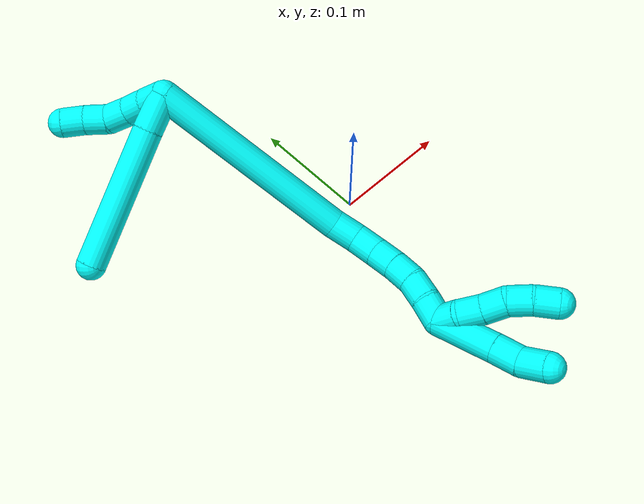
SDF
<sdf version="1.7">
 <world name="default">
  <model name="3">
   <static>0</static>
   <link name="3">
    <collision name="collision-cylinder-e_1_2_8">
     <pose>-0.008551 -0.012284 -0.00471 1.93692 -0.576349 -0.814086</pose>
     <geometry><cylinder><radius>0.0125</radius><length>0.031381</length></cylinder></geometry>
     <surface>
      <friction><ode><mu>1.16</mu><mu2>1.16</mu2><slip1>0</slip1><slip2>0</slip2></ode></friction>
      <contact><ode><kp>1e+06</kp><kd>1</kd><max_vel>0</max_vel><min_depth>0.001</min_depth></ode></contact>
     </surface>
    </collision>
    <visual name="visual-cylinder-e_1_2_8">
     <pose>-0.008551 -0.012284 -0.00471 1.93692 -0.576349 -0.814086</pose>
     <geometry><cylinder><radius>0.0125</radius><length>0.031381</length></cylinder></geometry>
     <material><ambient>0.003922 1 0.996078 1</ambient></material>
    </visual>
    <collision name="collision-cylinder-e_2_8_6">
     <pose>-0.050963 -0.071135 -0.023649 1.86736 -0.607633 -0.801431</pose>
     <geometry><cylinder><radius>0.0125</radius><length>0.118619</length></cylinder></geometry>
     <surface>
      <friction><ode><mu>1.16</mu><mu2>1.16</mu2><slip1>0</slip1><slip2>0</slip2></ode></friction>
      <contact><ode><kp>1e+06</kp><kd>1</kd><max_vel>0</max_vel><min_depth>0.001</min_depth></ode></contact>
     </surface>
    </collision>
    <visual name="visual-cylinder-e_2_8_6">
     <pose>-0.050963 -0.071135 -0.023649 1.86736 -0.607633 -0.801431</pose>
     <geometry><cylinder><radius>0.0125</radius><length>0.118619</length></cylinder></geometry>
     <material><ambient>0.003922 1 0.996078 1</ambient></material>
    </visual>
    <collision name="collision-cylinder-e_1_2_9">
     <pose>-0.001126 -0.003043 -0.009459 2.83039 -0.112793 -0.690925</pose>
     <geometry><cylinder><radius>0.0125</radius><length>0.02</length></cylinder></geometry>
     <surface>
      <friction><ode><mu>1.16</mu><mu2>1.16</mu2><slip1>0</slip1><slip2>0</slip2></ode></friction>
      <contact><ode><kp>1e+06</kp><kd>1</kd><max_vel>0</max_vel><min_depth>0.001</min_depth></ode></contact>
     </surface>
    </collision>
    <visual name="visual-cylinder-e_1_2_9">
     <pose>-0.001126 -0.003043 -0.009459 2.83039 -0.112793 -0.690925</pose>
     <geometry><cylinder><radius>0.0125</radius><length>0.02</length></cylinder></geometry>
     <material><ambient>0.003922 1 0.996078 1</ambient></material>
    </visual>
    <collision name="collision-cylinder-e_2_9_10">
     <pose>-0.004398 -0.009331 -0.02813 2.80283 -0.216372 -1.13161</pose>
     <geometry><cylinder><radius>0.0125</radius><length>0.02</length></cylinder></geometry>
     <surface>
      <friction><ode><mu>1.16</mu><mu2>1.16</mu2><slip1>0</slip1><slip2>0</slip2></ode></friction>
      <contact><ode><kp>1e+06</kp><kd>1</kd><max_vel>0</max_vel><min_depth>0.001</min_depth></ode></contact>
     </surface>
    </collision>
    <visual name="visual-cylinder-e_2_9_10">
     <pose>-0.004398 -0.009331 -0.02813 2.80283 -0.216372 -1.13161</pose>
     <geometry><cylinder><radius>0.0125</radius><length>0.02</length></cylinder></geometry>
     <material><ambient>0.003922 1 0.996078 1</ambient></material>
    </visual>
    <collision name="collision-cylinder-e_3_10_11">
     <pose>-0.010889 -0.015098 -0.045989 2.8579 -0.449393 -2.02467</pose>
     <geometry><cylinder><radius>0.0125</radius><length>0.02</length></cylinder></geometry>
     <surface>
      <friction><ode><mu>1.16</mu><mu2>1.16</mu2><slip1>0</slip1><slip2>0</slip2></ode></friction>
      <contact><ode><kp>1e+06</kp><kd>1</kd><max_vel>0</max_vel><min_depth>0.001</min_depth></ode></contact>
     </surface>
    </collision>
    <visual name="visual-cylinder-e_3_10_11">
     <pose>-0.010889 -0.015098 -0.045989 2.8579 -0.449393 -2.02467</pose>
     <geometry><cylinder><radius>0.0125</radius><length>0.02</length></cylinder></geometry>
     <material><ambient>0.003922 1 0.996078 1</ambient></material>
    </visual>
    <collision name="collision-cylinder-e_4_11_12">
     <pose>-0.019859 -0.016734 -0.063458 -3.04163 -0.480901 2.73908</pose>
     <geometry><cylinder><radius>0.0125</radius><length>0.02</length></cylinder></geometry>
     <surface>
      <friction><ode><mu>1.16</mu><mu2>1.16</mu2><slip1>0</slip1><slip2>0</slip2></ode></friction>
      <contact><ode><kp>1e+06</kp><kd>1</kd><max_vel>0</max_vel><min_depth>0.001</min_depth></ode></contact>
     </surface>
    </collision>
    <visual name="visual-cylinder-e_4_11_12">
     <pose>-0.019859 -0.016734 -0.063458 -3.04163 -0.480901 2.73908</pose>
     <geometry><cylinder><radius>0.0125</radius><length>0.02</length></cylinder></geometry>
     <material><ambient>0.003922 1 0.996078 1</ambient></material>
    </visual>
    <collision name="collision-cylinder-e_5_12_5">
     <pose>-0.03045 -0.015384 -0.080291 -3.08362 -0.639223 2.96681</pose>
     <geometry><cylinder><radius>0.0125</radius><length>0.02</length></cylinder></geometry>
     <surface>
      <friction><ode><mu>1.16</mu><mu2>1.16</mu2><slip1>0</slip1><slip2>0</slip2></ode></friction>
      <contact><ode><kp>1e+06</kp><kd>1</kd><max_vel>0</max_vel><min_depth>0.001</min_depth></ode></contact>
     </surface>
    </collision>
    <visual name="visual-cylinder-e_5_12_5">
     <pose>-0.03045 -0.015384 -0.080291 -3.08362 -0.639223 2.96681</pose>
     <geometry><cylinder><radius>0.0125</radius><length>0.02</length></cylinder></geometry>
     <material><ambient>0.003922 1 0.996078 1</ambient></material>
    </visual>
    <collision name="collision-cylinder-e_1_2_13">
     <pose>0.032428 -0.065488 0.048377 0.934555 0.379034 0.192962</pose>
     <geometry><cylinder><radius>0.0125</radius><length>0.175278</length></cylinder></geometry>
     <surface>
      <friction><ode><mu>1.16</mu><mu2>1.16</mu2><slip1>0</slip1><slip2>0</slip2></ode></friction>
      <contact><ode><kp>1e+06</kp><kd>1</kd><max_vel>0</max_vel><min_depth>0.001</min_depth></ode></contact>
     </surface>
    </collision>
    <visual name="visual-cylinder-e_1_2_13">
     <pose>0.032428 -0.065488 0.048377 0.934555 0.379034 0.192962</pose>
     <geometry><cylinder><radius>0.0125</radius><length>0.175278</length></cylinder></geometry>
     <material><ambient>0.003922 1 0.996078 1</ambient></material>
    </visual>
    <collision name="collision-cylinder-e_2_13_14">
     <pose>0.068248 -0.138221 0.104675 0.740849 0.306023 0.119638</pose>
     <geometry><cylinder><radius>0.0125</radius><length>0.022516</length></cylinder></geometry>
     <surface>
      <friction><ode><mu>1.16</mu><mu2>1.16</mu2><slip1>0</slip1><slip2>0</slip2></ode></friction>
      <contact><ode><kp>1e+06</kp><kd>1</kd><max_vel>0</max_vel><min_depth>0.001</min_depth></ode></contact>
     </surface>
    </collision>
    <visual name="visual-cylinder-e_2_13_14">
     <pose>0.068248 -0.138221 0.104675 0.740849 0.306023 0.119638</pose>
     <geometry><cylinder><radius>0.0125</radius><length>0.022516</length></cylinder></geometry>
     <material><ambient>0.003922 1 0.996078 1</ambient></material>
    </visual>
    <collision name="collision-cylinder-e_3_14_15">
     <pose>0.071955 -0.151158 0.121785 0.55463 0.029104 0.008285</pose>
     <geometry><cylinder><radius>0.0125</radius><length>0.021626</length></cylinder></geometry>
     <surface>
      <friction><ode><mu>1.16</mu><mu2>1.16</mu2><slip1>0</slip1><slip2>0</slip2></ode></friction>
      <contact><ode><kp>1e+06</kp><kd>1</kd><max_vel>0</max_vel><min_depth>0.001</min_depth></ode></contact>
     </surface>
    </collision>
    <visual name="visual-cylinder-e_3_14_15">
     <pose>0.071955 -0.151158 0.121785 0.55463 0.029104 0.008285</pose>
     <geometry><cylinder><radius>0.0125</radius><length>0.021626</length></cylinder></geometry>
     <material><ambient>0.003922 1 0.996078 1</ambient></material>
    </visual>
    <collision name="collision-cylinder-e_4_15_16">
     <pose>0.071116 -0.161248 0.140192 0.445165 -0.112442 -0.025475</pose>
     <geometry><cylinder><radius>0.0125</radius><length>0.020559</length></cylinder></geometry>
     <surface>
      <friction><ode><mu>1.16</mu><mu2>1.16</mu2><slip1>0</slip1><slip2>0</slip2></ode></friction>
      <contact><ode><kp>1e+06</kp><kd>1</kd><max_vel>0</max_vel><min_depth>0.001</min_depth></ode></contact>
     </surface>
    </collision>
    <visual name="visual-cylinder-e_4_15_16">
     <pose>0.071116 -0.161248 0.140192 0.445165 -0.112442 -0.025475</pose>
     <geometry><cylinder><radius>0.0125</radius><length>0.020559</length></cylinder></geometry>
     <material><ambient>0.003922 1 0.996078 1</ambient></material>
    </visual>
    <collision name="collision-cylinder-e_5_16_17">
     <pose>0.068359 -0.170433 0.158053 0.505754 -0.160904 -0.041663</pose>
     <geometry><cylinder><radius>0.0125</radius><length>0.020016</length></cylinder></geometry>
     <surface>
      <friction><ode><mu>1.16</mu><mu2>1.16</mu2><slip1>0</slip1><slip2>0</slip2></ode></friction>
      <contact><ode><kp>1e+06</kp><kd>1</kd><max_vel>0</max_vel><min_depth>0.001</min_depth></ode></contact>
     </surface>
    </collision>
    <visual name="visual-cylinder-e_5_16_17">
     <pose>0.068359 -0.170433 0.158053 0.505754 -0.160904 -0.041663</pose>
     <geometry><cylinder><radius>0.0125</radius><length>0.020016</length></cylinder></geometry>
     <material><ambient>0.003922 1 0.996078 1</ambient></material>
    </visual>
    <collision name="collision-cylinder-e_6_17_18">
     <pose>0.063551 -0.18118 0.174058 0.680595 -0.326229 -0.116412</pose>
     <geometry><cylinder><radius>0.0125</radius><length>0.020003</length></cylinder></geometry>
     <surface>
      <friction><ode><mu>1.16</mu><mu2>1.16</mu2><slip1>0</slip1><slip2>0</slip2></ode></friction>
      <contact><ode><kp>1e+06</kp><kd>1</kd><max_vel>0</max_vel><min_depth>0.001</min_depth></ode></contact>
     </surface>
    </collision>
    <visual name="visual-cylinder-e_6_17_18">
     <pose>0.063551 -0.18118 0.174058 0.680595 -0.326229 -0.116412</pose>
     <geometry><cylinder><radius>0.0125</radius><length>0.020003</length></cylinder></geometry>
     <material><ambient>0.003922 1 0.996078 1</ambient></material>
    </visual>
    <collision name="collision-cylinder-e_7_18_1">
     <pose>0.057858 -0.194393 0.187845 0.845831 -0.251313 -0.113586</pose>
     <geometry><cylinder><radius>0.0125</radius><length>0.020002</length></cylinder></geometry>
     <surface>
      <friction><ode><mu>1.16</mu><mu2>1.16</mu2><slip1>0</slip1><slip2>0</slip2></ode></friction>
      <contact><ode><kp>1e+06</kp><kd>1</kd><max_vel>0</max_vel><min_depth>0.001</min_depth></ode></contact>
     </surface>
    </collision>
    <visual name="visual-cylinder-e_7_18_1">
     <pose>0.057858 -0.194393 0.187845 0.845831 -0.251313 -0.113586</pose>
     <geometry><cylinder><radius>0.0125</radius><length>0.020002</length></cylinder></geometry>
     <material><ambient>0.003922 1 0.996078 1</ambient></material>
    </visual>
    <collision name="collision-cylinder-e_1_1_19">
     <pose>0.056942 -0.198263 0.203548 -0.349309 0.157704 -0.027883</pose>
     <geometry><cylinder><radius>0.0125</radius><length>0.02</length></cylinder></geometry>
     <surface>
      <friction><ode><mu>1.16</mu><mu2>1.16</mu2><slip1>0</slip1><slip2>0</slip2></ode></friction>
      <contact><ode><kp>1e+06</kp><kd>1</kd><max_vel>0</max_vel><min_depth>0.001</min_depth></ode></contact>
     </surface>
    </collision>
    <visual name="visual-cylinder-e_1_1_19">
     <pose>0.056942 -0.198263 0.203548 -0.349309 0.157704 -0.027883</pose>
     <geometry><cylinder><radius>0.0125</radius><length>0.02</length></cylinder></geometry>
     <material><ambient>0.003922 1 0.996078 1</ambient></material>
    </visual>
    <collision name="collision-cylinder-e_2_19_20">
     <pose>0.062871 -0.193252 0.221678 -0.182326 0.450968 -0.041933</pose>
     <geometry><cylinder><radius>0.0125</radius><length>0.02</length></cylinder></geometry>
     <surface>
      <friction><ode><mu>1.16</mu><mu2>1.16</mu2><slip1>0</slip1><slip2>0</slip2></ode></friction>
      <contact><ode><kp>1e+06</kp><kd>1</kd><max_vel>0</max_vel><min_depth>0.001</min_depth></ode></contact>
     </surface>
    </collision>
    <visual name="visual-cylinder-e_2_19_20">
     <pose>0.062871 -0.193252 0.221678 -0.182326 0.450968 -0.041933</pose>
     <geometry><cylinder><radius>0.0125</radius><length>0.02</length></cylinder></geometry>
     <material><ambient>0.003922 1 0.996078 1</ambient></material>
    </visual>
    <collision name="collision-cylinder-e_3_20_21">
     <pose>0.071398 -0.188796 0.239169 -0.315922 0.430019 -0.069544</pose>
     <geometry><cylinder><radius>0.0125</radius><length>0.02</length></cylinder></geometry>
     <surface>
      <friction><ode><mu>1.16</mu><mu2>1.16</mu2><slip1>0</slip1><slip2>0</slip2></ode></friction>
      <contact><ode><kp>1e+06</kp><kd>1</kd><max_vel>0</max_vel><min_depth>0.001</min_depth></ode></contact>
     </surface>
    </collision>
    <visual name="visual-cylinder-e_3_20_21">
     <pose>0.071398 -0.188796 0.239169 -0.315922 0.430019 -0.069544</pose>
     <geometry><cylinder><radius>0.0125</radius><length>0.02</length></cylinder></geometry>
     <material><ambient>0.003922 1 0.996078 1</ambient></material>
    </visual>
    <collision name="collision-cylinder-e_4_21_22">
     <pose>0.079911 -0.186392 0.256806 0.046678 0.44936 0.01067</pose>
     <geometry><cylinder><radius>0.0125</radius><length>0.02</length></cylinder></geometry>
     <surface>
      <friction><ode><mu>1.16</mu><mu2>1.16</mu2><slip1>0</slip1><slip2>0</slip2></ode></friction>
      <contact><ode><kp>1e+06</kp><kd>1</kd><max_vel>0</max_vel><min_depth>0.001</min_depth></ode></contact>
     </surface>
    </collision>
    <visual name="visual-cylinder-e_4_21_22">
     <pose>0.079911 -0.186392 0.256806 0.046678 0.44936 0.01067</pose>
     <geometry><cylinder><radius>0.0125</radius><length>0.02</length></cylinder></geometry>
     <material><ambient>0.003922 1 0.996078 1</ambient></material>
    </visual>
    <collision name="collision-cylinder-e_5_22_4">
     <pose>0.088738 -0.189108 0.274443 0.259717 0.464919 0.061813</pose>
     <geometry><cylinder><radius>0.0125</radius><length>0.02</length></cylinder></geometry>
     <surface>
      <friction><ode><mu>1.16</mu><mu2>1.16</mu2><slip1>0</slip1><slip2>0</slip2></ode></friction>
      <contact><ode><kp>1e+06</kp><kd>1</kd><max_vel>0</max_vel><min_depth>0.001</min_depth></ode></contact>
     </surface>
    </collision>
    <visual name="visual-cylinder-e_5_22_4">
     <pose>0.088738 -0.189108 0.274443 0.259717 0.464919 0.061813</pose>
     <geometry><cylinder><radius>0.0125</radius><length>0.02</length></cylinder></geometry>
     <material><ambient>0.003922 1 0.996078 1</ambient></material>
    </visual>
    <collision name="collision-cylinder-e_1_1_23">
     <pose>0.055392 -0.209804 0.219252 0.315712 0.000779 0.000124</pose>
     <geometry><cylinder><radius>0.0125</radius><length>0.052565</length></cylinder></geometry>
     <surface>
      <friction><ode><mu>1.16</mu><mu2>1.16</mu2><slip1>0</slip1><slip2>0</slip2></ode></friction>
      <contact><ode><kp>1e+06</kp><kd>1</kd><max_vel>0</max_vel><min_depth>0.001</min_depth></ode></contact>
     </surface>
    </collision>
    <visual name="visual-cylinder-e_1_1_23">
     <pose>0.055392 -0.209804 0.219252 0.315712 0.000779 0.000124</pose>
     <geometry><cylinder><radius>0.0125</radius><length>0.052565</length></cylinder></geometry>
     <material><ambient>0.003922 1 0.996078 1</ambient></material>
    </visual>
    <collision name="collision-cylinder-e_2_23_24">
     <pose>0.055313 -0.221831 0.25513 0.341005 -0.008632 -0.001486</pose>
     <geometry><cylinder><radius>0.0125</radius><length>0.023121</length></cylinder></geometry>
     <surface>
      <friction><ode><mu>1.16</mu><mu2>1.16</mu2><slip1>0</slip1><slip2>0</slip2></ode></friction>
      <contact><ode><kp>1e+06</kp><kd>1</kd><max_vel>0</max_vel><min_depth>0.001</min_depth></ode></contact>
     </surface>
    </collision>
    <visual name="visual-cylinder-e_2_23_24">
     <pose>0.055313 -0.221831 0.25513 0.341005 -0.008632 -0.001486</pose>
     <geometry><cylinder><radius>0.0125</radius><length>0.023121</length></cylinder></geometry>
     <material><ambient>0.003922 1 0.996078 1</ambient></material>
    </visual>
    <collision name="collision-cylinder-e_3_24_3">
     <pose>0.055256 -0.225878 0.27818 0.014885 0.003514 2.6e-05</pose>
     <geometry><cylinder><radius>0.0125</radius><length>0.024314</length></cylinder></geometry>
     <surface>
      <friction><ode><mu>1.16</mu><mu2>1.16</mu2><slip1>0</slip1><slip2>0</slip2></ode></friction>
      <contact><ode><kp>1e+06</kp><kd>1</kd><max_vel>0</max_vel><min_depth>0.001</min_depth></ode></contact>
     </surface>
    </collision>
    <visual name="visual-cylinder-e_3_24_3">
     <pose>0.055256 -0.225878 0.27818 0.014885 0.003514 2.6e-05</pose>
     <geometry><cylinder><radius>0.0125</radius><length>0.024314</length></cylinder></geometry>
     <material><ambient>0.003922 1 0.996078 1</ambient></material>
    </visual>
    <collision name="collision-sphere-3">
     <pose>0.055298 -0.226059 0.290335 0 -0 0</pose>
     <geometry><sphere><radius>0.0125</radius></sphere></geometry>
     <surface>
      <friction><ode><mu>1.16</mu><mu2>1.16</mu2><slip1>0</slip1><slip2>0</slip2></ode></friction>
      <contact><ode><kp>1e+06</kp><kd>1</kd><max_vel>0</max_vel><min_depth>0.001</min_depth></ode></contact>
     </surface>
    </collision>
    <visual name="visual-sphere-3">
     <pose>0.055298 -0.226059 0.290335 0 -0 0</pose>
     <geometry><sphere><radius>0.0125</radius></sphere></geometry>
     <material><ambient>0.003922 1 0.996078 1</ambient></material>
    </visual>
    <collision name="collision-sphere-24">
     <pose>0.055213 -0.225697 0.266025 0 -0 0</pose>
     <geometry><sphere><radius>0.0125</radius></sphere></geometry>
     <surface>
      <friction><ode><mu>1.16</mu><mu2>1.16</mu2><slip1>0</slip1><slip2>0</slip2></ode></friction>
      <contact><ode><kp>1e+06</kp><kd>1</kd><max_vel>0</max_vel><min_depth>0.001</min_depth></ode></contact>
     </surface>
    </collision>
    <visual name="visual-sphere-24">
     <pose>0.055213 -0.225697 0.266025 0 -0 0</pose>
     <geometry><sphere><radius>0.0125</radius></sphere></geometry>
     <material><ambient>0.003922 1 0.996078 1</ambient></material>
    </visual>
    <collision name="collision-sphere-23">
     <pose>0.055412 -0.217965 0.244235 0 -0 0</pose>
     <geometry><sphere><radius>0.0125</radius></sphere></geometry>
     <surface>
      <friction><ode><mu>1.16</mu><mu2>1.16</mu2><slip1>0</slip1><slip2>0</slip2></ode></friction>
      <contact><ode><kp>1e+06</kp><kd>1</kd><max_vel>0</max_vel><min_depth>0.001</min_depth></ode></contact>
     </surface>
    </collision>
    <visual name="visual-sphere-23">
     <pose>0.055412 -0.217965 0.244235 0 -0 0</pose>
     <geometry><sphere><radius>0.0125</radius></sphere></geometry>
     <material><ambient>0.003922 1 0.996078 1</ambient></material>
    </visual>
    <collision name="collision-sphere-4">
     <pose>0.093222 -0.191403 0.283081 0 -0 0</pose>
     <geometry><sphere><radius>0.0125</radius></sphere></geometry>
     <surface>
      <friction><ode><mu>1.16</mu><mu2>1.16</mu2><slip1>0</slip1><slip2>0</slip2></ode></friction>
      <contact><ode><kp>1e+06</kp><kd>1</kd><max_vel>0</max_vel><min_depth>0.001</min_depth></ode></contact>
     </surface>
    </collision>
    <visual name="visual-sphere-4">
     <pose>0.093222 -0.191403 0.283081 0 -0 0</pose>
     <geometry><sphere><radius>0.0125</radius></sphere></geometry>
     <material><ambient>0.003922 1 0.996078 1</ambient></material>
    </visual>
    <collision name="collision-sphere-22">
     <pose>0.084255 -0.186812 0.265804 0 -0 0</pose>
     <geometry><sphere><radius>0.0125</radius></sphere></geometry>
     <surface>
      <friction><ode><mu>1.16</mu><mu2>1.16</mu2><slip1>0</slip1><slip2>0</slip2></ode></friction>
      <contact><ode><kp>1e+06</kp><kd>1</kd><max_vel>0</max_vel><min_depth>0.001</min_depth></ode></contact>
     </surface>
    </collision>
    <visual name="visual-sphere-22">
     <pose>0.084255 -0.186812 0.265804 0 -0 0</pose>
     <geometry><sphere><radius>0.0125</radius></sphere></geometry>
     <material><ambient>0.003922 1 0.996078 1</ambient></material>
    </visual>
    <collision name="collision-sphere-21">
     <pose>0.075567 -0.185972 0.247809 0 -0 0</pose>
     <geometry><sphere><radius>0.0125</radius></sphere></geometry>
     <surface>
      <friction><ode><mu>1.16</mu><mu2>1.16</mu2><slip1>0</slip1><slip2>0</slip2></ode></friction>
      <contact><ode><kp>1e+06</kp><kd>1</kd><max_vel>0</max_vel><min_depth>0.001</min_depth></ode></contact>
     </surface>
    </collision>
    <visual name="visual-sphere-21">
     <pose>0.075567 -0.185972 0.247809 0 -0 0</pose>
     <geometry><sphere><radius>0.0125</radius></sphere></geometry>
     <material><ambient>0.003922 1 0.996078 1</ambient></material>
    </visual>
    <collision name="collision-sphere-20">
     <pose>0.067229 -0.19162 0.23053 0 -0 0</pose>
     <geometry><sphere><radius>0.0125</radius></sphere></geometry>
     <surface>
      <friction><ode><mu>1.16</mu><mu2>1.16</mu2><slip1>0</slip1><slip2>0</slip2></ode></friction>
      <contact><ode><kp>1e+06</kp><kd>1</kd><max_vel>0</max_vel><min_depth>0.001</min_depth></ode></contact>
     </surface>
    </collision>
    <visual name="visual-sphere-20">
     <pose>0.067229 -0.19162 0.23053 0 -0 0</pose>
     <geometry><sphere><radius>0.0125</radius></sphere></geometry>
     <material><ambient>0.003922 1 0.996078 1</ambient></material>
    </visual>
    <collision name="collision-sphere-11">
     <pose>-0.015233 -0.017619 -0.054636 0 -0 0</pose>
     <geometry><sphere><radius>0.0125</radius></sphere></geometry>
     <surface>
      <friction><ode><mu>1.16</mu><mu2>1.16</mu2><slip1>0</slip1><slip2>0</slip2></ode></friction>
      <contact><ode><kp>1e+06</kp><kd>1</kd><max_vel>0</max_vel><min_depth>0.001</min_depth></ode></contact>
     </surface>
    </collision>
    <visual name="visual-sphere-11">
     <pose>-0.015233 -0.017619 -0.054636 0 -0 0</pose>
     <geometry><sphere><radius>0.0125</radius></sphere></geometry>
     <material><ambient>0.003922 1 0.996078 1</ambient></material>
    </visual>
    <collision name="collision-sphere-10">
     <pose>-0.006545 -0.012577 -0.037342 0 -0 0</pose>
     <geometry><sphere><radius>0.0125</radius></sphere></geometry>
     <surface>
      <friction><ode><mu>1.16</mu><mu2>1.16</mu2><slip1>0</slip1><slip2>0</slip2></ode></friction>
      <contact><ode><kp>1e+06</kp><kd>1</kd><max_vel>0</max_vel><min_depth>0.001</min_depth></ode></contact>
     </surface>
    </collision>
    <visual name="visual-sphere-10">
     <pose>-0.006545 -0.012577 -0.037342 0 -0 0</pose>
     <geometry><sphere><radius>0.0125</radius></sphere></geometry>
     <material><ambient>0.003922 1 0.996078 1</ambient></material>
    </visual>
    <collision name="collision-sphere-6">
     <pose>-0.084824 -0.117703 -0.037879 0 -0 0</pose>
     <geometry><sphere><radius>0.0125</radius></sphere></geometry>
     <surface>
      <friction><ode><mu>1.16</mu><mu2>1.16</mu2><slip1>0</slip1><slip2>0</slip2></ode></friction>
      <contact><ode><kp>1e+06</kp><kd>1</kd><max_vel>0</max_vel><min_depth>0.001</min_depth></ode></contact>
     </surface>
    </collision>
    <visual name="visual-sphere-6">
     <pose>-0.084824 -0.117703 -0.037879 0 -0 0</pose>
     <geometry><sphere><radius>0.0125</radius></sphere></geometry>
     <material><ambient>0.003922 1 0.996078 1</ambient></material>
    </visual>
    <collision name="collision-sphere-9">
     <pose>-0.002251 -0.006085 -0.018918 0 -0 0</pose>
     <geometry><sphere><radius>0.0125</radius></sphere></geometry>
     <surface>
      <friction><ode><mu>1.16</mu><mu2>1.16</mu2><slip1>0</slip1><slip2>0</slip2></ode></friction>
      <contact><ode><kp>1e+06</kp><kd>1</kd><max_vel>0</max_vel><min_depth>0.001</min_depth></ode></contact>
     </surface>
    </collision>
    <visual name="visual-sphere-9">
     <pose>-0.002251 -0.006085 -0.018918 0 -0 0</pose>
     <geometry><sphere><radius>0.0125</radius></sphere></geometry>
     <material><ambient>0.003922 1 0.996078 1</ambient></material>
    </visual>
    <collision name="collision-sphere-2">
     <geometry><sphere><radius>0.0125</radius></sphere></geometry>
     <surface>
      <friction><ode><mu>1.16</mu><mu2>1.16</mu2><slip1>0</slip1><slip2>0</slip2></ode></friction>
      <contact><ode><kp>1e+06</kp><kd>1</kd><max_vel>0</max_vel><min_depth>0.001</min_depth></ode></contact>
     </surface>
    </collision>
    <visual name="visual-sphere-2">
     <geometry><sphere><radius>0.0125</radius></sphere></geometry>
     <material><ambient>0.003922 1 0.996078 1</ambient></material>
    </visual>
    <collision name="collision-sphere-19">
     <pose>0.058512 -0.194883 0.212827 0 -0 0</pose>
     <geometry><sphere><radius>0.0125</radius></sphere></geometry>
     <surface>
      <friction><ode><mu>1.16</mu><mu2>1.16</mu2><slip1>0</slip1><slip2>0</slip2></ode></friction>
      <contact><ode><kp>1e+06</kp><kd>1</kd><max_vel>0</max_vel><min_depth>0.001</min_depth></ode></contact>
     </surface>
    </collision>
    <visual name="visual-sphere-19">
     <pose>0.058512 -0.194883 0.212827 0 -0 0</pose>
     <geometry><sphere><radius>0.0125</radius></sphere></geometry>
     <material><ambient>0.003922 1 0.996078 1</ambient></material>
    </visual>
    <collision name="collision-sphere-8">
     <pose>-0.017102 -0.024568 -0.00942 0 -0 0</pose>
     <geometry><sphere><radius>0.0125</radius></sphere></geometry>
     <surface>
      <friction><ode><mu>1.16</mu><mu2>1.16</mu2><slip1>0</slip1><slip2>0</slip2></ode></friction>
      <contact><ode><kp>1e+06</kp><kd>1</kd><max_vel>0</max_vel><min_depth>0.001</min_depth></ode></contact>
     </surface>
    </collision>
    <visual name="visual-sphere-8">
     <pose>-0.017102 -0.024568 -0.00942 0 -0 0</pose>
     <geometry><sphere><radius>0.0125</radius></sphere></geometry>
     <material><ambient>0.003922 1 0.996078 1</ambient></material>
    </visual>
    <collision name="collision-sphere-12">
     <pose>-0.024485 -0.015849 -0.072279 0 -0 0</pose>
     <geometry><sphere><radius>0.0125</radius></sphere></geometry>
     <surface>
      <friction><ode><mu>1.16</mu><mu2>1.16</mu2><slip1>0</slip1><slip2>0</slip2></ode></friction>
      <contact><ode><kp>1e+06</kp><kd>1</kd><max_vel>0</max_vel><min_depth>0.001</min_depth></ode></contact>
     </surface>
    </collision>
    <visual name="visual-sphere-12">
     <pose>-0.024485 -0.015849 -0.072279 0 -0 0</pose>
     <geometry><sphere><radius>0.0125</radius></sphere></geometry>
     <material><ambient>0.003922 1 0.996078 1</ambient></material>
    </visual>
    <collision name="collision-sphere-5">
     <pose>-0.036416 -0.014919 -0.088303 0 -0 0</pose>
     <geometry><sphere><radius>0.0125</radius></sphere></geometry>
     <surface>
      <friction><ode><mu>1.16</mu><mu2>1.16</mu2><slip1>0</slip1><slip2>0</slip2></ode></friction>
      <contact><ode><kp>1e+06</kp><kd>1</kd><max_vel>0</max_vel><min_depth>0.001</min_depth></ode></contact>
     </surface>
    </collision>
    <visual name="visual-sphere-5">
     <pose>-0.036416 -0.014919 -0.088303 0 -0 0</pose>
     <geometry><sphere><radius>0.0125</radius></sphere></geometry>
     <material><ambient>0.003922 1 0.996078 1</ambient></material>
    </visual>
    <collision name="collision-sphere-13">
     <pose>0.064857 -0.130976 0.096754 0 -0 0</pose>
     <geometry><sphere><radius>0.0125</radius></sphere></geometry>
     <surface>
      <friction><ode><mu>1.16</mu><mu2>1.16</mu2><slip1>0</slip1><slip2>0</slip2></ode></friction>
      <contact><ode><kp>1e+06</kp><kd>1</kd><max_vel>0</max_vel><min_depth>0.001</min_depth></ode></contact>
     </surface>
    </collision>
    <visual name="visual-sphere-13">
     <pose>0.064857 -0.130976 0.096754 0 -0 0</pose>
     <geometry><sphere><radius>0.0125</radius></sphere></geometry>
     <material><ambient>0.003922 1 0.996078 1</ambient></material>
    </visual>
    <collision name="collision-sphere-14">
     <pose>0.07164 -0.145466 0.112596 0 -0 0</pose>
     <geometry><sphere><radius>0.0125</radius></sphere></geometry>
     <surface>
      <friction><ode><mu>1.16</mu><mu2>1.16</mu2><slip1>0</slip1><slip2>0</slip2></ode></friction>
      <contact><ode><kp>1e+06</kp><kd>1</kd><max_vel>0</max_vel><min_depth>0.001</min_depth></ode></contact>
     </surface>
    </collision>
    <visual name="visual-sphere-14">
     <pose>0.07164 -0.145466 0.112596 0 -0 0</pose>
     <geometry><sphere><radius>0.0125</radius></sphere></geometry>
     <material><ambient>0.003922 1 0.996078 1</ambient></material>
    </visual>
    <collision name="collision-sphere-15">
     <pose>0.072269 -0.15685 0.130973 0 -0 0</pose>
     <geometry><sphere><radius>0.0125</radius></sphere></geometry>
     <surface>
      <friction><ode><mu>1.16</mu><mu2>1.16</mu2><slip1>0</slip1><slip2>0</slip2></ode></friction>
      <contact><ode><kp>1e+06</kp><kd>1</kd><max_vel>0</max_vel><min_depth>0.001</min_depth></ode></contact>
     </surface>
    </collision>
    <visual name="visual-sphere-15">
     <pose>0.072269 -0.15685 0.130973 0 -0 0</pose>
     <geometry><sphere><radius>0.0125</radius></sphere></geometry>
     <material><ambient>0.003922 1 0.996078 1</ambient></material>
    </visual>
    <collision name="collision-sphere-16">
     <pose>0.069963 -0.165647 0.149411 0 -0 0</pose>
     <geometry><sphere><radius>0.0125</radius></sphere></geometry>
     <surface>
      <friction><ode><mu>1.16</mu><mu2>1.16</mu2><slip1>0</slip1><slip2>0</slip2></ode></friction>
      <contact><ode><kp>1e+06</kp><kd>1</kd><max_vel>0</max_vel><min_depth>0.001</min_depth></ode></contact>
     </surface>
    </collision>
    <visual name="visual-sphere-16">
     <pose>0.069963 -0.165647 0.149411 0 -0 0</pose>
     <geometry><sphere><radius>0.0125</radius></sphere></geometry>
     <material><ambient>0.003922 1 0.996078 1</ambient></material>
    </visual>
    <collision name="collision-sphere-17">
     <pose>0.066756 -0.175219 0.166695 0 -0 0</pose>
     <geometry><sphere><radius>0.0125</radius></sphere></geometry>
     <surface>
      <friction><ode><mu>1.16</mu><mu2>1.16</mu2><slip1>0</slip1><slip2>0</slip2></ode></friction>
      <contact><ode><kp>1e+06</kp><kd>1</kd><max_vel>0</max_vel><min_depth>0.001</min_depth></ode></contact>
     </surface>
    </collision>
    <visual name="visual-sphere-17">
     <pose>0.066756 -0.175219 0.166695 0 -0 0</pose>
     <geometry><sphere><radius>0.0125</radius></sphere></geometry>
     <material><ambient>0.003922 1 0.996078 1</ambient></material>
    </visual>
    <collision name="collision-sphere-18">
     <pose>0.060345 -0.187142 0.181421 0 -0 0</pose>
     <geometry><sphere><radius>0.0125</radius></sphere></geometry>
     <surface>
      <friction><ode><mu>1.16</mu><mu2>1.16</mu2><slip1>0</slip1><slip2>0</slip2></ode></friction>
      <contact><ode><kp>1e+06</kp><kd>1</kd><max_vel>0</max_vel><min_depth>0.001</min_depth></ode></contact>
     </surface>
    </collision>
    <visual name="visual-sphere-18">
     <pose>0.060345 -0.187142 0.181421 0 -0 0</pose>
     <geometry><sphere><radius>0.0125</radius></sphere></geometry>
     <material><ambient>0.003922 1 0.996078 1</ambient></material>
    </visual>
    <collision name="collision-sphere-1">
     <pose>0.055371 -0.201643 0.194268 0 -0 0</pose>
     <geometry><sphere><radius>0.0125</radius></sphere></geometry>
     <surface>
      <friction><ode><mu>1.16</mu><mu2>1.16</mu2><slip1>0</slip1><slip2>0</slip2></ode></friction>
      <contact><ode><kp>1e+06</kp><kd>1</kd><max_vel>0</max_vel><min_depth>0.001</min_depth></ode></contact>
     </surface>
    </collision>
    <visual name="visual-sphere-1">
     <pose>0.055371 -0.201643 0.194268 0 -0 0</pose>
     <geometry><sphere><radius>0.0125</radius></sphere></geometry>
     <material><ambient>0.003922 1 0.996078 1</ambient></material>
    </visual>
    <inertial>
     <pose>0.025492 -0.110506 0.089807 0 -0 0</pose>
     <mass>0.75</mass>
     <inertia>
      <ixx>0.000521</ixx>
      <ixy>0</ixy>
      <ixz>0</ixz>
      <iyy>0.000317</iyy>
      <iyz>0</iyz>
      <izz>0.000403</izz>
     </inertia>
    </inertial>
   </link>
   <pose>-0.086332 0.130784 0.105016 1.05268 0.367006 0.106832</pose>
  </model>
 </world>
</sdf>
